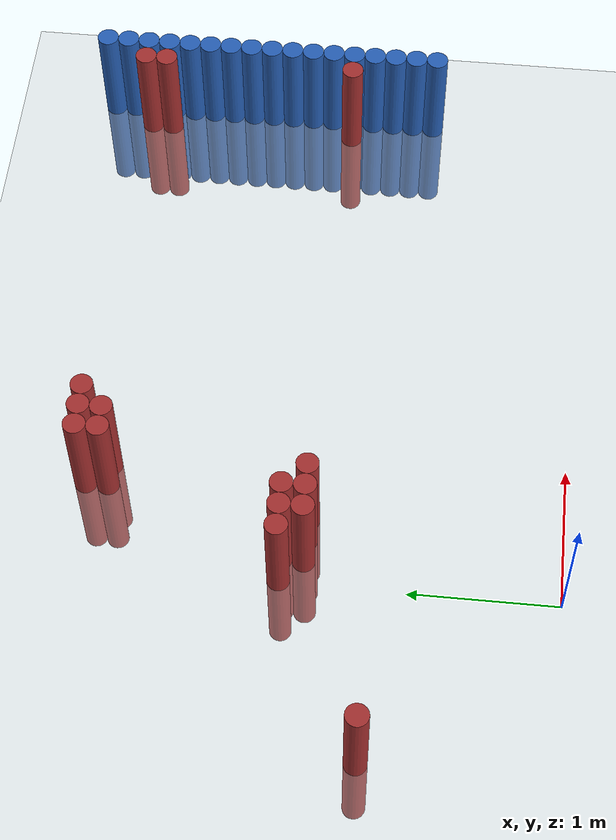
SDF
<sdf version="1.6">
 <world name="default">
  <model name="ground_plane">
   <static>1</static>
   <link name="link">
    <collision name="collision">
     <geometry><plane><normal>0 0 1</normal><size>100 100</size></plane></geometry>
     <surface><friction><ode><mu>100</mu><mu2>50</mu2></ode></friction></surface>
    </collision>
    <visual name="visual">
     <cast_shadows>0</cast_shadows>
     <geometry><plane><normal>0 0 1</normal><size>100 100</size></plane></geometry>
     <material>
      <script><uri>file://media/materials/scripts/gazebo.material</uri><name>Gazebo/Grey</name></script>
     </material>
    </visual>
   </link>
  </model>
  <model name="unit_cylinder_128">
   <static>1</static>
   <pose>3.925000 1.075000 0.000000 0.000000 0.000000 0.000000</pose>
   <link name="link">
    <inertial>
     <mass>1</mass>
     <inertia><ixx>0.145833</ixx><ixy>0</ixy><ixz>0</ixz><iyy>0.145833</iyy><iyz>0</iyz><izz>0.125</izz></inertia>
    </inertial>
    <collision name="collision">
     <geometry><cylinder><radius>0.075000</radius><length>1.5</length></cylinder></geometry>
    </collision>
    <visual name="visual">
     <geometry><cylinder><radius>0.075000</radius><length>1.5</length></cylinder></geometry>
     <material>
      <ambient>0.152000 0.379000 0.720000 1</ambient>
      <diffuse>0.152000 0.379000 0.720000 1</diffuse>
     </material>
     <material>
      <script><name>Gazebo/Grey</name><uri>file://media/materials/scripts/gazebo.material</uri></script>
     </material>
    </visual>
   </link>
  </model>
  <model name="unit_cylinder_130">
   <static>1</static>
   <pose>3.925000 1.225000 0.000000 0.000000 0.000000 0.000000</pose>
   <link name="link">
    <inertial>
     <mass>1</mass>
     <inertia><ixx>0.145833</ixx><ixy>0</ixy><ixz>0</ixz><iyy>0.145833</iyy><iyz>0</iyz><izz>0.125</izz></inertia>
    </inertial>
    <collision name="collision">
     <geometry><cylinder><radius>0.075000</radius><length>1.5</length></cylinder></geometry>
    </collision>
    <visual name="visual">
     <geometry><cylinder><radius>0.075000</radius><length>1.5</length></cylinder></geometry>
     <material>
      <ambient>0.152000 0.379000 0.720000 1</ambient>
      <diffuse>0.152000 0.379000 0.720000 1</diffuse>
     </material>
     <material>
      <script><name>Gazebo/Grey</name><uri>file://media/materials/scripts/gazebo.material</uri></script>
     </material>
    </visual>
   </link>
  </model>
  <model name="unit_cylinder_132">
   <static>1</static>
   <pose>3.925000 1.375000 0.000000 0.000000 0.000000 0.000000</pose>
   <link name="link">
    <inertial>
     <mass>1</mass>
     <inertia><ixx>0.145833</ixx><ixy>0</ixy><ixz>0</ixz><iyy>0.145833</iyy><iyz>0</iyz><izz>0.125</izz></inertia>
    </inertial>
    <collision name="collision">
     <geometry><cylinder><radius>0.075000</radius><length>1.5</length></cylinder></geometry>
    </collision>
    <visual name="visual">
     <geometry><cylinder><radius>0.075000</radius><length>1.5</length></cylinder></geometry>
     <material>
      <ambient>0.152000 0.379000 0.720000 1</ambient>
      <diffuse>0.152000 0.379000 0.720000 1</diffuse>
     </material>
     <material>
      <script><name>Gazebo/Grey</name><uri>file://media/materials/scripts/gazebo.material</uri></script>
     </material>
    </visual>
   </link>
  </model>
  <model name="unit_cylinder_134">
   <static>1</static>
   <pose>3.925000 1.525000 0.000000 0.000000 0.000000 0.000000</pose>
   <link name="link">
    <inertial>
     <mass>1</mass>
     <inertia><ixx>0.145833</ixx><ixy>0</ixy><ixz>0</ixz><iyy>0.145833</iyy><iyz>0</iyz><izz>0.125</izz></inertia>
    </inertial>
    <collision name="collision">
     <geometry><cylinder><radius>0.075000</radius><length>1.5</length></cylinder></geometry>
    </collision>
    <visual name="visual">
     <geometry><cylinder><radius>0.075000</radius><length>1.5</length></cylinder></geometry>
     <material>
      <ambient>0.152000 0.379000 0.720000 1</ambient>
      <diffuse>0.152000 0.379000 0.720000 1</diffuse>
     </material>
     <material>
      <script><name>Gazebo/Grey</name><uri>file://media/materials/scripts/gazebo.material</uri></script>
     </material>
    </visual>
   </link>
  </model>
  <model name="unit_cylinder_136">
   <static>1</static>
   <pose>3.925000 1.675000 0.000000 0.000000 0.000000 0.000000</pose>
   <link name="link">
    <inertial>
     <mass>1</mass>
     <inertia><ixx>0.145833</ixx><ixy>0</ixy><ixz>0</ixz><iyy>0.145833</iyy><iyz>0</iyz><izz>0.125</izz></inertia>
    </inertial>
    <collision name="collision">
     <geometry><cylinder><radius>0.075000</radius><length>1.5</length></cylinder></geometry>
    </collision>
    <visual name="visual">
     <geometry><cylinder><radius>0.075000</radius><length>1.5</length></cylinder></geometry>
     <material>
      <ambient>0.152000 0.379000 0.720000 1</ambient>
      <diffuse>0.152000 0.379000 0.720000 1</diffuse>
     </material>
     <material>
      <script><name>Gazebo/Grey</name><uri>file://media/materials/scripts/gazebo.material</uri></script>
     </material>
    </visual>
   </link>
  </model>
  <model name="unit_cylinder_138">
   <static>1</static>
   <pose>3.925000 1.825000 0.000000 0.000000 0.000000 0.000000</pose>
   <link name="link">
    <inertial>
     <mass>1</mass>
     <inertia><ixx>0.145833</ixx><ixy>0</ixy><ixz>0</ixz><iyy>0.145833</iyy><iyz>0</iyz><izz>0.125</izz></inertia>
    </inertial>
    <collision name="collision">
     <geometry><cylinder><radius>0.075000</radius><length>1.5</length></cylinder></geometry>
    </collision>
    <visual name="visual">
     <geometry><cylinder><radius>0.075000</radius><length>1.5</length></cylinder></geometry>
     <material>
      <ambient>0.152000 0.379000 0.720000 1</ambient>
      <diffuse>0.152000 0.379000 0.720000 1</diffuse>
     </material>
     <material>
      <script><name>Gazebo/Grey</name><uri>file://media/materials/scripts/gazebo.material</uri></script>
     </material>
    </visual>
   </link>
  </model>
  <model name="unit_cylinder_140">
   <static>1</static>
   <pose>3.925000 1.975000 0.000000 0.000000 0.000000 0.000000</pose>
   <link name="link">
    <inertial>
     <mass>1</mass>
     <inertia><ixx>0.145833</ixx><ixy>0</ixy><ixz>0</ixz><iyy>0.145833</iyy><iyz>0</iyz><izz>0.125</izz></inertia>
    </inertial>
    <collision name="collision">
     <geometry><cylinder><radius>0.075000</radius><length>1.5</length></cylinder></geometry>
    </collision>
    <visual name="visual">
     <geometry><cylinder><radius>0.075000</radius><length>1.5</length></cylinder></geometry>
     <material>
      <ambient>0.152000 0.379000 0.720000 1</ambient>
      <diffuse>0.152000 0.379000 0.720000 1</diffuse>
     </material>
     <material>
      <script><name>Gazebo/Grey</name><uri>file://media/materials/scripts/gazebo.material</uri></script>
     </material>
    </visual>
   </link>
  </model>
  <model name="unit_cylinder_142">
   <static>1</static>
   <pose>3.925000 2.125000 0.000000 0.000000 0.000000 0.000000</pose>
   <link name="link">
    <inertial>
     <mass>1</mass>
     <inertia><ixx>0.145833</ixx><ixy>0</ixy><ixz>0</ixz><iyy>0.145833</iyy><iyz>0</iyz><izz>0.125</izz></inertia>
    </inertial>
    <collision name="collision">
     <geometry><cylinder><radius>0.075000</radius><length>1.5</length></cylinder></geometry>
    </collision>
    <visual name="visual">
     <geometry><cylinder><radius>0.075000</radius><length>1.5</length></cylinder></geometry>
     <material>
      <ambient>0.152000 0.379000 0.720000 1</ambient>
      <diffuse>0.152000 0.379000 0.720000 1</diffuse>
     </material>
     <material>
      <script><name>Gazebo/Grey</name><uri>file://media/materials/scripts/gazebo.material</uri></script>
     </material>
    </visual>
   </link>
  </model>
  <model name="unit_cylinder_144">
   <static>1</static>
   <pose>3.925000 2.275000 0.000000 0.000000 0.000000 0.000000</pose>
   <link name="link">
    <inertial>
     <mass>1</mass>
     <inertia><ixx>0.145833</ixx><ixy>0</ixy><ixz>0</ixz><iyy>0.145833</iyy><iyz>0</iyz><izz>0.125</izz></inertia>
    </inertial>
    <collision name="collision">
     <geometry><cylinder><radius>0.075000</radius><length>1.5</length></cylinder></geometry>
    </collision>
    <visual name="visual">
     <geometry><cylinder><radius>0.075000</radius><length>1.5</length></cylinder></geometry>
     <material>
      <ambient>0.152000 0.379000 0.720000 1</ambient>
      <diffuse>0.152000 0.379000 0.720000 1</diffuse>
     </material>
     <material>
      <script><name>Gazebo/Grey</name><uri>file://media/materials/scripts/gazebo.material</uri></script>
     </material>
    </visual>
   </link>
  </model>
  <model name="unit_cylinder_146">
   <static>1</static>
   <pose>3.925000 2.425000 0.000000 0.000000 0.000000 0.000000</pose>
   <link name="link">
    <inertial>
     <mass>1</mass>
     <inertia><ixx>0.145833</ixx><ixy>0</ixy><ixz>0</ixz><iyy>0.145833</iyy><iyz>0</iyz><izz>0.125</izz></inertia>
    </inertial>
    <collision name="collision">
     <geometry><cylinder><radius>0.075000</radius><length>1.5</length></cylinder></geometry>
    </collision>
    <visual name="visual">
     <geometry><cylinder><radius>0.075000</radius><length>1.5</length></cylinder></geometry>
     <material>
      <ambient>0.152000 0.379000 0.720000 1</ambient>
      <diffuse>0.152000 0.379000 0.720000 1</diffuse>
     </material>
     <material>
      <script><name>Gazebo/Grey</name><uri>file://media/materials/scripts/gazebo.material</uri></script>
     </material>
    </visual>
   </link>
  </model>
  <model name="unit_cylinder_148">
   <static>1</static>
   <pose>3.925000 2.575000 0.000000 0.000000 0.000000 0.000000</pose>
   <link name="link">
    <inertial>
     <mass>1</mass>
     <inertia><ixx>0.145833</ixx><ixy>0</ixy><ixz>0</ixz><iyy>0.145833</iyy><iyz>0</iyz><izz>0.125</izz></inertia>
    </inertial>
    <collision name="collision">
     <geometry><cylinder><radius>0.075000</radius><length>1.5</length></cylinder></geometry>
    </collision>
    <visual name="visual">
     <geometry><cylinder><radius>0.075000</radius><length>1.5</length></cylinder></geometry>
     <material>
      <ambient>0.152000 0.379000 0.720000 1</ambient>
      <diffuse>0.152000 0.379000 0.720000 1</diffuse>
     </material>
     <material>
      <script><name>Gazebo/Grey</name><uri>file://media/materials/scripts/gazebo.material</uri></script>
     </material>
    </visual>
   </link>
  </model>
  <model name="unit_cylinder_150">
   <static>1</static>
   <pose>3.925000 2.725000 0.000000 0.000000 0.000000 0.000000</pose>
   <link name="link">
    <inertial>
     <mass>1</mass>
     <inertia><ixx>0.145833</ixx><ixy>0</ixy><ixz>0</ixz><iyy>0.145833</iyy><iyz>0</iyz><izz>0.125</izz></inertia>
    </inertial>
    <collision name="collision">
     <geometry><cylinder><radius>0.075000</radius><length>1.5</length></cylinder></geometry>
    </collision>
    <visual name="visual">
     <geometry><cylinder><radius>0.075000</radius><length>1.5</length></cylinder></geometry>
     <material>
      <ambient>0.152000 0.379000 0.720000 1</ambient>
      <diffuse>0.152000 0.379000 0.720000 1</diffuse>
     </material>
     <material>
      <script><name>Gazebo/Grey</name><uri>file://media/materials/scripts/gazebo.material</uri></script>
     </material>
    </visual>
   </link>
  </model>
  <model name="unit_cylinder_152">
   <static>1</static>
   <pose>3.925000 2.875000 0.000000 0.000000 0.000000 0.000000</pose>
   <link name="link">
    <inertial>
     <mass>1</mass>
     <inertia><ixx>0.145833</ixx><ixy>0</ixy><ixz>0</ixz><iyy>0.145833</iyy><iyz>0</iyz><izz>0.125</izz></inertia>
    </inertial>
    <collision name="collision">
     <geometry><cylinder><radius>0.075000</radius><length>1.5</length></cylinder></geometry>
    </collision>
    <visual name="visual">
     <geometry><cylinder><radius>0.075000</radius><length>1.5</length></cylinder></geometry>
     <material>
      <ambient>0.152000 0.379000 0.720000 1</ambient>
      <diffuse>0.152000 0.379000 0.720000 1</diffuse>
     </material>
     <material>
      <script><name>Gazebo/Grey</name><uri>file://media/materials/scripts/gazebo.material</uri></script>
     </material>
    </visual>
   </link>
  </model>
  <model name="unit_cylinder_154">
   <static>1</static>
   <pose>3.925000 3.025000 0.000000 0.000000 0.000000 0.000000</pose>
   <link name="link">
    <inertial>
     <mass>1</mass>
     <inertia><ixx>0.145833</ixx><ixy>0</ixy><ixz>0</ixz><iyy>0.145833</iyy><iyz>0</iyz><izz>0.125</izz></inertia>
    </inertial>
    <collision name="collision">
     <geometry><cylinder><radius>0.075000</radius><length>1.5</length></cylinder></geometry>
    </collision>
    <visual name="visual">
     <geometry><cylinder><radius>0.075000</radius><length>1.5</length></cylinder></geometry>
     <material>
      <ambient>0.152000 0.379000 0.720000 1</ambient>
      <diffuse>0.152000 0.379000 0.720000 1</diffuse>
     </material>
     <material>
      <script><name>Gazebo/Grey</name><uri>file://media/materials/scripts/gazebo.material</uri></script>
     </material>
    </visual>
   </link>
  </model>
  <model name="unit_cylinder_156">
   <static>1</static>
   <pose>3.925000 3.175000 0.000000 0.000000 0.000000 0.000000</pose>
   <link name="link">
    <inertial>
     <mass>1</mass>
     <inertia><ixx>0.145833</ixx><ixy>0</ixy><ixz>0</ixz><iyy>0.145833</iyy><iyz>0</iyz><izz>0.125</izz></inertia>
    </inertial>
    <collision name="collision">
     <geometry><cylinder><radius>0.075000</radius><length>1.5</length></cylinder></geometry>
    </collision>
    <visual name="visual">
     <geometry><cylinder><radius>0.075000</radius><length>1.5</length></cylinder></geometry>
     <material>
      <ambient>0.152000 0.379000 0.720000 1</ambient>
      <diffuse>0.152000 0.379000 0.720000 1</diffuse>
     </material>
     <material>
      <script><name>Gazebo/Grey</name><uri>file://media/materials/scripts/gazebo.material</uri></script>
     </material>
    </visual>
   </link>
  </model>
  <model name="unit_cylinder_158">
   <static>1</static>
   <pose>3.925000 3.325000 0.000000 0.000000 0.000000 0.000000</pose>
   <link name="link">
    <inertial>
     <mass>1</mass>
     <inertia><ixx>0.145833</ixx><ixy>0</ixy><ixz>0</ixz><iyy>0.145833</iyy><iyz>0</iyz><izz>0.125</izz></inertia>
    </inertial>
    <collision name="collision">
     <geometry><cylinder><radius>0.075000</radius><length>1.5</length></cylinder></geometry>
    </collision>
    <visual name="visual">
     <geometry><cylinder><radius>0.075000</radius><length>1.5</length></cylinder></geometry>
     <material>
      <ambient>0.152000 0.379000 0.720000 1</ambient>
      <diffuse>0.152000 0.379000 0.720000 1</diffuse>
     </material>
     <material>
      <script><name>Gazebo/Grey</name><uri>file://media/materials/scripts/gazebo.material</uri></script>
     </material>
    </visual>
   </link>
  </model>
  <model name="unit_cylinder_160">
   <static>1</static>
   <pose>3.925000 3.475000 0.000000 0.000000 0.000000 0.000000</pose>
   <link name="link">
    <inertial>
     <mass>1</mass>
     <inertia><ixx>0.145833</ixx><ixy>0</ixy><ixz>0</ixz><iyy>0.145833</iyy><iyz>0</iyz><izz>0.125</izz></inertia>
    </inertial>
    <collision name="collision">
     <geometry><cylinder><radius>0.075000</radius><length>1.5</length></cylinder></geometry>
    </collision>
    <visual name="visual">
     <geometry><cylinder><radius>0.075000</radius><length>1.5</length></cylinder></geometry>
     <material>
      <ambient>0.152000 0.379000 0.720000 1</ambient>
      <diffuse>0.152000 0.379000 0.720000 1</diffuse>
     </material>
     <material>
      <script><name>Gazebo/Grey</name><uri>file://media/materials/scripts/gazebo.material</uri></script>
     </material>
    </visual>
   </link>
  </model>
  <model name="unit_cylinder_293">
   <static>1</static>
   <pose>-1.175000 1.225000 0.000000 0.000000 0.000000 0.000000</pose>
   <link name="link">
    <inertial>
     <mass>1</mass>
     <inertia><ixx>0.145833</ixx><ixy>0</ixy><ixz>0</ixz><iyy>0.145833</iyy><iyz>0</iyz><izz>0.125</izz></inertia>
    </inertial>
    <collision name="collision">
     <geometry><cylinder><radius>0.075000</radius><length>1.5</length></cylinder></geometry>
    </collision>
    <visual name="visual">
     <geometry><cylinder><radius>0.075000</radius><length>1.5</length></cylinder></geometry>
     <material>
      <ambient>0.648000 0.192000 0.192000 1</ambient>
      <diffuse>0.648000 0.192000 0.192000 1</diffuse>
     </material>
     <material>
      <script><name>Gazebo/Grey</name><uri>file://media/materials/scripts/gazebo.material</uri></script>
     </material>
    </visual>
   </link>
  </model>
  <model name="unit_cylinder_300">
   <static>1</static>
   <pose>0.025000 1.825000 0.000000 0.000000 0.000000 0.000000</pose>
   <link name="link">
    <inertial>
     <mass>1</mass>
     <inertia><ixx>0.145833</ixx><ixy>0</ixy><ixz>0</ixz><iyy>0.145833</iyy><iyz>0</iyz><izz>0.125</izz></inertia>
    </inertial>
    <collision name="collision">
     <geometry><cylinder><radius>0.075000</radius><length>1.5</length></cylinder></geometry>
    </collision>
    <visual name="visual">
     <geometry><cylinder><radius>0.075000</radius><length>1.5</length></cylinder></geometry>
     <material>
      <ambient>0.648000 0.192000 0.192000 1</ambient>
      <diffuse>0.648000 0.192000 0.192000 1</diffuse>
     </material>
     <material>
      <script><name>Gazebo/Grey</name><uri>file://media/materials/scripts/gazebo.material</uri></script>
     </material>
    </visual>
   </link>
  </model>
  <model name="unit_cylinder_301">
   <static>1</static>
   <pose>0.175000 1.675000 0.000000 0.000000 0.000000 0.000000</pose>
   <link name="link">
    <inertial>
     <mass>1</mass>
     <inertia><ixx>0.145833</ixx><ixy>0</ixy><ixz>0</ixz><iyy>0.145833</iyy><iyz>0</iyz><izz>0.125</izz></inertia>
    </inertial>
    <collision name="collision">
     <geometry><cylinder><radius>0.075000</radius><length>1.5</length></cylinder></geometry>
    </collision>
    <visual name="visual">
     <geometry><cylinder><radius>0.075000</radius><length>1.5</length></cylinder></geometry>
     <material>
      <ambient>0.648000 0.192000 0.192000 1</ambient>
      <diffuse>0.648000 0.192000 0.192000 1</diffuse>
     </material>
     <material>
      <script><name>Gazebo/Grey</name><uri>file://media/materials/scripts/gazebo.material</uri></script>
     </material>
    </visual>
   </link>
  </model>
  <model name="unit_cylinder_302">
   <static>1</static>
   <pose>0.175000 1.825000 0.000000 0.000000 0.000000 0.000000</pose>
   <link name="link">
    <inertial>
     <mass>1</mass>
     <inertia><ixx>0.145833</ixx><ixy>0</ixy><ixz>0</ixz><iyy>0.145833</iyy><iyz>0</iyz><izz>0.125</izz></inertia>
    </inertial>
    <collision name="collision">
     <geometry><cylinder><radius>0.075000</radius><length>1.5</length></cylinder></geometry>
    </collision>
    <visual name="visual">
     <geometry><cylinder><radius>0.075000</radius><length>1.5</length></cylinder></geometry>
     <material>
      <ambient>0.648000 0.192000 0.192000 1</ambient>
      <diffuse>0.648000 0.192000 0.192000 1</diffuse>
     </material>
     <material>
      <script><name>Gazebo/Grey</name><uri>file://media/materials/scripts/gazebo.material</uri></script>
     </material>
    </visual>
   </link>
  </model>
  <model name="unit_cylinder_304">
   <static>1</static>
   <pose>0.325000 1.675000 0.000000 0.000000 0.000000 0.000000</pose>
   <link name="link">
    <inertial>
     <mass>1</mass>
     <inertia><ixx>0.145833</ixx><ixy>0</ixy><ixz>0</ixz><iyy>0.145833</iyy><iyz>0</iyz><izz>0.125</izz></inertia>
    </inertial>
    <collision name="collision">
     <geometry><cylinder><radius>0.075000</radius><length>1.5</length></cylinder></geometry>
    </collision>
    <visual name="visual">
     <geometry><cylinder><radius>0.075000</radius><length>1.5</length></cylinder></geometry>
     <material>
      <ambient>0.648000 0.192000 0.192000 1</ambient>
      <diffuse>0.648000 0.192000 0.192000 1</diffuse>
     </material>
     <material>
      <script><name>Gazebo/Grey</name><uri>file://media/materials/scripts/gazebo.material</uri></script>
     </material>
    </visual>
   </link>
  </model>
  <model name="unit_cylinder_305">
   <static>1</static>
   <pose>0.325000 1.825000 0.000000 0.000000 0.000000 0.000000</pose>
   <link name="link">
    <inertial>
     <mass>1</mass>
     <inertia><ixx>0.145833</ixx><ixy>0</ixy><ixz>0</ixz><iyy>0.145833</iyy><iyz>0</iyz><izz>0.125</izz></inertia>
    </inertial>
    <collision name="collision">
     <geometry><cylinder><radius>0.075000</radius><length>1.5</length></cylinder></geometry>
    </collision>
    <visual name="visual">
     <geometry><cylinder><radius>0.075000</radius><length>1.5</length></cylinder></geometry>
     <material>
      <ambient>0.648000 0.192000 0.192000 1</ambient>
      <diffuse>0.648000 0.192000 0.192000 1</diffuse>
     </material>
     <material>
      <script><name>Gazebo/Grey</name><uri>file://media/materials/scripts/gazebo.material</uri></script>
     </material>
    </visual>
   </link>
  </model>
  <model name="unit_cylinder_310">
   <static>1</static>
   <pose>0.475000 1.675000 0.000000 0.000000 0.000000 0.000000</pose>
   <link name="link">
    <inertial>
     <mass>1</mass>
     <inertia><ixx>0.145833</ixx><ixy>0</ixy><ixz>0</ixz><iyy>0.145833</iyy><iyz>0</iyz><izz>0.125</izz></inertia>
    </inertial>
    <collision name="collision">
     <geometry><cylinder><radius>0.075000</radius><length>1.5</length></cylinder></geometry>
    </collision>
    <visual name="visual">
     <geometry><cylinder><radius>0.075000</radius><length>1.5</length></cylinder></geometry>
     <material>
      <ambient>0.648000 0.192000 0.192000 1</ambient>
      <diffuse>0.648000 0.192000 0.192000 1</diffuse>
     </material>
     <material>
      <script><name>Gazebo/Grey</name><uri>file://media/materials/scripts/gazebo.material</uri></script>
     </material>
    </visual>
   </link>
  </model>
  <model name="unit_cylinder_312">
   <static>1</static>
   <pose>0.625000 3.025000 0.000000 0.000000 0.000000 0.000000</pose>
   <link name="link">
    <inertial>
     <mass>1</mass>
     <inertia><ixx>0.145833</ixx><ixy>0</ixy><ixz>0</ixz><iyy>0.145833</iyy><iyz>0</iyz><izz>0.125</izz></inertia>
    </inertial>
    <collision name="collision">
     <geometry><cylinder><radius>0.075000</radius><length>1.5</length></cylinder></geometry>
    </collision>
    <visual name="visual">
     <geometry><cylinder><radius>0.075000</radius><length>1.5</length></cylinder></geometry>
     <material>
      <ambient>0.648000 0.192000 0.192000 1</ambient>
      <diffuse>0.648000 0.192000 0.192000 1</diffuse>
     </material>
     <material>
      <script><name>Gazebo/Grey</name><uri>file://media/materials/scripts/gazebo.material</uri></script>
     </material>
    </visual>
   </link>
  </model>
  <model name="unit_cylinder_313">
   <static>1</static>
   <pose>0.625000 3.175000 0.000000 0.000000 0.000000 0.000000</pose>
   <link name="link">
    <inertial>
     <mass>1</mass>
     <inertia><ixx>0.145833</ixx><ixy>0</ixy><ixz>0</ixz><iyy>0.145833</iyy><iyz>0</iyz><izz>0.125</izz></inertia>
    </inertial>
    <collision name="collision">
     <geometry><cylinder><radius>0.075000</radius><length>1.5</length></cylinder></geometry>
    </collision>
    <visual name="visual">
     <geometry><cylinder><radius>0.075000</radius><length>1.5</length></cylinder></geometry>
     <material>
      <ambient>0.648000 0.192000 0.192000 1</ambient>
      <diffuse>0.648000 0.192000 0.192000 1</diffuse>
     </material>
     <material>
      <script><name>Gazebo/Grey</name><uri>file://media/materials/scripts/gazebo.material</uri></script>
     </material>
    </visual>
   </link>
  </model>
  <model name="unit_cylinder_314">
   <static>1</static>
   <pose>0.775000 3.025000 0.000000 0.000000 0.000000 0.000000</pose>
   <link name="link">
    <inertial>
     <mass>1</mass>
     <inertia><ixx>0.145833</ixx><ixy>0</ixy><ixz>0</ixz><iyy>0.145833</iyy><iyz>0</iyz><izz>0.125</izz></inertia>
    </inertial>
    <collision name="collision">
     <geometry><cylinder><radius>0.075000</radius><length>1.5</length></cylinder></geometry>
    </collision>
    <visual name="visual">
     <geometry><cylinder><radius>0.075000</radius><length>1.5</length></cylinder></geometry>
     <material>
      <ambient>0.648000 0.192000 0.192000 1</ambient>
      <diffuse>0.648000 0.192000 0.192000 1</diffuse>
     </material>
     <material>
      <script><name>Gazebo/Grey</name><uri>file://media/materials/scripts/gazebo.material</uri></script>
     </material>
    </visual>
   </link>
  </model>
  <model name="unit_cylinder_315">
   <static>1</static>
   <pose>0.775000 3.175000 0.000000 0.000000 0.000000 0.000000</pose>
   <link name="link">
    <inertial>
     <mass>1</mass>
     <inertia><ixx>0.145833</ixx><ixy>0</ixy><ixz>0</ixz><iyy>0.145833</iyy><iyz>0</iyz><izz>0.125</izz></inertia>
    </inertial>
    <collision name="collision">
     <geometry><cylinder><radius>0.075000</radius><length>1.5</length></cylinder></geometry>
    </collision>
    <visual name="visual">
     <geometry><cylinder><radius>0.075000</radius><length>1.5</length></cylinder></geometry>
     <material>
      <ambient>0.648000 0.192000 0.192000 1</ambient>
      <diffuse>0.648000 0.192000 0.192000 1</diffuse>
     </material>
     <material>
      <script><name>Gazebo/Grey</name><uri>file://media/materials/scripts/gazebo.material</uri></script>
     </material>
    </visual>
   </link>
  </model>
  <model name="unit_cylinder_316">
   <static>1</static>
   <pose>0.925000 3.175000 0.000000 0.000000 0.000000 0.000000</pose>
   <link name="link">
    <inertial>
     <mass>1</mass>
     <inertia><ixx>0.145833</ixx><ixy>0</ixy><ixz>0</ixz><iyy>0.145833</iyy><iyz>0</iyz><izz>0.125</izz></inertia>
    </inertial>
    <collision name="collision">
     <geometry><cylinder><radius>0.075000</radius><length>1.5</length></cylinder></geometry>
    </collision>
    <visual name="visual">
     <geometry><cylinder><radius>0.075000</radius><length>1.5</length></cylinder></geometry>
     <material>
      <ambient>0.648000 0.192000 0.192000 1</ambient>
      <diffuse>0.648000 0.192000 0.192000 1</diffuse>
     </material>
     <material>
      <script><name>Gazebo/Grey</name><uri>file://media/materials/scripts/gazebo.material</uri></script>
     </material>
    </visual>
   </link>
  </model>
  <model name="unit_cylinder_328">
   <static>1</static>
   <pose>3.775000 1.675000 0.000000 0.000000 0.000000 0.000000</pose>
   <link name="link">
    <inertial>
     <mass>1</mass>
     <inertia><ixx>0.145833</ixx><ixy>0</ixy><ixz>0</ixz><iyy>0.145833</iyy><iyz>0</iyz><izz>0.125</izz></inertia>
    </inertial>
    <collision name="collision">
     <geometry><cylinder><radius>0.075000</radius><length>1.5</length></cylinder></geometry>
    </collision>
    <visual name="visual">
     <geometry><cylinder><radius>0.075000</radius><length>1.5</length></cylinder></geometry>
     <material>
      <ambient>0.648000 0.192000 0.192000 1</ambient>
      <diffuse>0.648000 0.192000 0.192000 1</diffuse>
     </material>
     <material>
      <script><name>Gazebo/Grey</name><uri>file://media/materials/scripts/gazebo.material</uri></script>
     </material>
    </visual>
   </link>
  </model>
  <model name="unit_cylinder_329">
   <static>1</static>
   <pose>3.775000 3.025000 0.000000 0.000000 0.000000 0.000000</pose>
   <link name="link">
    <inertial>
     <mass>1</mass>
     <inertia><ixx>0.145833</ixx><ixy>0</ixy><ixz>0</ixz><iyy>0.145833</iyy><iyz>0</iyz><izz>0.125</izz></inertia>
    </inertial>
    <collision name="collision">
     <geometry><cylinder><radius>0.075000</radius><length>1.5</length></cylinder></geometry>
    </collision>
    <visual name="visual">
     <geometry><cylinder><radius>0.075000</radius><length>1.5</length></cylinder></geometry>
     <material>
      <ambient>0.648000 0.192000 0.192000 1</ambient>
      <diffuse>0.648000 0.192000 0.192000 1</diffuse>
     </material>
     <material>
      <script><name>Gazebo/Grey</name><uri>file://media/materials/scripts/gazebo.material</uri></script>
     </material>
    </visual>
   </link>
  </model>
  <model name="unit_cylinder_330">
   <static>1</static>
   <pose>3.775000 3.175000 0.000000 0.000000 0.000000 0.000000</pose>
   <link name="link">
    <inertial>
     <mass>1</mass>
     <inertia><ixx>0.145833</ixx><ixy>0</ixy><ixz>0</ixz><iyy>0.145833</iyy><iyz>0</iyz><izz>0.125</izz></inertia>
    </inertial>
    <collision name="collision">
     <geometry><cylinder><radius>0.075000</radius><length>1.5</length></cylinder></geometry>
    </collision>
    <visual name="visual">
     <geometry><cylinder><radius>0.075000</radius><length>1.5</length></cylinder></geometry>
     <material>
      <ambient>0.648000 0.192000 0.192000 1</ambient>
      <diffuse>0.648000 0.192000 0.192000 1</diffuse>
     </material>
     <material>
      <script><name>Gazebo/Grey</name><uri>file://media/materials/scripts/gazebo.material</uri></script>
     </material>
    </visual>
   </link>
  </model>
  <model name="unit_cylinder_353">
   <static>1</static>
   <pose>3.925000 1.075000 0.000000 0.000000 0.000000 0.000000</pose>
   <link name="link">
    <inertial>
     <mass>1</mass>
     <inertia><ixx>0.145833</ixx><ixy>0</ixy><ixz>0</ixz><iyy>0.145833</iyy><iyz>0</iyz><izz>0.125</izz></inertia>
    </inertial>
    <collision name="collision">
     <geometry><cylinder><radius>0.075000</radius><length>1.5</length></cylinder></geometry>
    </collision>
    <visual name="visual">
     <geometry><cylinder><radius>0.075000</radius><length>1.5</length></cylinder></geometry>
     <material>
      <ambient>0.152000 0.379000 0.720000 1</ambient>
      <diffuse>0.152000 0.379000 0.720000 1</diffuse>
     </material>
     <material>
      <script><name>Gazebo/Grey</name><uri>file://media/materials/scripts/gazebo.material</uri></script>
     </material>
    </visual>
   </link>
  </model>
  <model name="unit_cylinder_354">
   <static>1</static>
   <pose>3.925000 1.225000 0.000000 0.000000 0.000000 0.000000</pose>
   <link name="link">
    <inertial>
     <mass>1</mass>
     <inertia><ixx>0.145833</ixx><ixy>0</ixy><ixz>0</ixz><iyy>0.145833</iyy><iyz>0</iyz><izz>0.125</izz></inertia>
    </inertial>
    <collision name="collision">
     <geometry><cylinder><radius>0.075000</radius><length>1.5</length></cylinder></geometry>
    </collision>
    <visual name="visual">
     <geometry><cylinder><radius>0.075000</radius><length>1.5</length></cylinder></geometry>
     <material>
      <ambient>0.152000 0.379000 0.720000 1</ambient>
      <diffuse>0.152000 0.379000 0.720000 1</diffuse>
     </material>
     <material>
      <script><name>Gazebo/Grey</name><uri>file://media/materials/scripts/gazebo.material</uri></script>
     </material>
    </visual>
   </link>
  </model>
  <model name="unit_cylinder_355">
   <static>1</static>
   <pose>3.925000 1.375000 0.000000 0.000000 0.000000 0.000000</pose>
   <link name="link">
    <inertial>
     <mass>1</mass>
     <inertia><ixx>0.145833</ixx><ixy>0</ixy><ixz>0</ixz><iyy>0.145833</iyy><iyz>0</iyz><izz>0.125</izz></inertia>
    </inertial>
    <collision name="collision">
     <geometry><cylinder><radius>0.075000</radius><length>1.5</length></cylinder></geometry>
    </collision>
    <visual name="visual">
     <geometry><cylinder><radius>0.075000</radius><length>1.5</length></cylinder></geometry>
     <material>
      <ambient>0.152000 0.379000 0.720000 1</ambient>
      <diffuse>0.152000 0.379000 0.720000 1</diffuse>
     </material>
     <material>
      <script><name>Gazebo/Grey</name><uri>file://media/materials/scripts/gazebo.material</uri></script>
     </material>
    </visual>
   </link>
  </model>
  <model name="unit_cylinder_356">
   <static>1</static>
   <pose>3.925000 1.525000 0.000000 0.000000 0.000000 0.000000</pose>
   <link name="link">
    <inertial>
     <mass>1</mass>
     <inertia><ixx>0.145833</ixx><ixy>0</ixy><ixz>0</ixz><iyy>0.145833</iyy><iyz>0</iyz><izz>0.125</izz></inertia>
    </inertial>
    <collision name="collision">
     <geometry><cylinder><radius>0.075000</radius><length>1.5</length></cylinder></geometry>
    </collision>
    <visual name="visual">
     <geometry><cylinder><radius>0.075000</radius><length>1.5</length></cylinder></geometry>
     <material>
      <ambient>0.152000 0.379000 0.720000 1</ambient>
      <diffuse>0.152000 0.379000 0.720000 1</diffuse>
     </material>
     <material>
      <script><name>Gazebo/Grey</name><uri>file://media/materials/scripts/gazebo.material</uri></script>
     </material>
    </visual>
   </link>
  </model>
  <model name="unit_cylinder_357">
   <static>1</static>
   <pose>3.925000 1.675000 0.000000 0.000000 0.000000 0.000000</pose>
   <link name="link">
    <inertial>
     <mass>1</mass>
     <inertia><ixx>0.145833</ixx><ixy>0</ixy><ixz>0</ixz><iyy>0.145833</iyy><iyz>0</iyz><izz>0.125</izz></inertia>
    </inertial>
    <collision name="collision">
     <geometry><cylinder><radius>0.075000</radius><length>1.5</length></cylinder></geometry>
    </collision>
    <visual name="visual">
     <geometry><cylinder><radius>0.075000</radius><length>1.5</length></cylinder></geometry>
     <material>
      <ambient>0.152000 0.379000 0.720000 1</ambient>
      <diffuse>0.152000 0.379000 0.720000 1</diffuse>
     </material>
     <material>
      <script><name>Gazebo/Grey</name><uri>file://media/materials/scripts/gazebo.material</uri></script>
     </material>
    </visual>
   </link>
  </model>
  <model name="unit_cylinder_358">
   <static>1</static>
   <pose>3.925000 1.825000 0.000000 0.000000 0.000000 0.000000</pose>
   <link name="link">
    <inertial>
     <mass>1</mass>
     <inertia><ixx>0.145833</ixx><ixy>0</ixy><ixz>0</ixz><iyy>0.145833</iyy><iyz>0</iyz><izz>0.125</izz></inertia>
    </inertial>
    <collision name="collision">
     <geometry><cylinder><radius>0.075000</radius><length>1.5</length></cylinder></geometry>
    </collision>
    <visual name="visual">
     <geometry><cylinder><radius>0.075000</radius><length>1.5</length></cylinder></geometry>
     <material>
      <ambient>0.152000 0.379000 0.720000 1</ambient>
      <diffuse>0.152000 0.379000 0.720000 1</diffuse>
     </material>
     <material>
      <script><name>Gazebo/Grey</name><uri>file://media/materials/scripts/gazebo.material</uri></script>
     </material>
    </visual>
   </link>
  </model>
  <model name="unit_cylinder_359">
   <static>1</static>
   <pose>3.925000 1.975000 0.000000 0.000000 0.000000 0.000000</pose>
   <link name="link">
    <inertial>
     <mass>1</mass>
     <inertia><ixx>0.145833</ixx><ixy>0</ixy><ixz>0</ixz><iyy>0.145833</iyy><iyz>0</iyz><izz>0.125</izz></inertia>
    </inertial>
    <collision name="collision">
     <geometry><cylinder><radius>0.075000</radius><length>1.5</length></cylinder></geometry>
    </collision>
    <visual name="visual">
     <geometry><cylinder><radius>0.075000</radius><length>1.5</length></cylinder></geometry>
     <material>
      <ambient>0.152000 0.379000 0.720000 1</ambient>
      <diffuse>0.152000 0.379000 0.720000 1</diffuse>
     </material>
     <material>
      <script><name>Gazebo/Grey</name><uri>file://media/materials/scripts/gazebo.material</uri></script>
     </material>
    </visual>
   </link>
  </model>
  <model name="unit_cylinder_360">
   <static>1</static>
   <pose>3.925000 2.125000 0.000000 0.000000 0.000000 0.000000</pose>
   <link name="link">
    <inertial>
     <mass>1</mass>
     <inertia><ixx>0.145833</ixx><ixy>0</ixy><ixz>0</ixz><iyy>0.145833</iyy><iyz>0</iyz><izz>0.125</izz></inertia>
    </inertial>
    <collision name="collision">
     <geometry><cylinder><radius>0.075000</radius><length>1.5</length></cylinder></geometry>
    </collision>
    <visual name="visual">
     <geometry><cylinder><radius>0.075000</radius><length>1.5</length></cylinder></geometry>
     <material>
      <ambient>0.152000 0.379000 0.720000 1</ambient>
      <diffuse>0.152000 0.379000 0.720000 1</diffuse>
     </material>
     <material>
      <script><name>Gazebo/Grey</name><uri>file://media/materials/scripts/gazebo.material</uri></script>
     </material>
    </visual>
   </link>
  </model>
  <model name="unit_cylinder_361">
   <static>1</static>
   <pose>3.925000 2.275000 0.000000 0.000000 0.000000 0.000000</pose>
   <link name="link">
    <inertial>
     <mass>1</mass>
     <inertia><ixx>0.145833</ixx><ixy>0</ixy><ixz>0</ixz><iyy>0.145833</iyy><iyz>0</iyz><izz>0.125</izz></inertia>
    </inertial>
    <collision name="collision">
     <geometry><cylinder><radius>0.075000</radius><length>1.5</length></cylinder></geometry>
    </collision>
    <visual name="visual">
     <geometry><cylinder><radius>0.075000</radius><length>1.5</length></cylinder></geometry>
     <material>
      <ambient>0.152000 0.379000 0.720000 1</ambient>
      <diffuse>0.152000 0.379000 0.720000 1</diffuse>
     </material>
     <material>
      <script><name>Gazebo/Grey</name><uri>file://media/materials/scripts/gazebo.material</uri></script>
     </material>
    </visual>
   </link>
  </model>
  <model name="unit_cylinder_362">
   <static>1</static>
   <pose>3.925000 2.425000 0.000000 0.000000 0.000000 0.000000</pose>
   <link name="link">
    <inertial>
     <mass>1</mass>
     <inertia><ixx>0.145833</ixx><ixy>0</ixy><ixz>0</ixz><iyy>0.145833</iyy><iyz>0</iyz><izz>0.125</izz></inertia>
    </inertial>
    <collision name="collision">
     <geometry><cylinder><radius>0.075000</radius><length>1.5</length></cylinder></geometry>
    </collision>
    <visual name="visual">
     <geometry><cylinder><radius>0.075000</radius><length>1.5</length></cylinder></geometry>
     <material>
      <ambient>0.152000 0.379000 0.720000 1</ambient>
      <diffuse>0.152000 0.379000 0.720000 1</diffuse>
     </material>
     <material>
      <script><name>Gazebo/Grey</name><uri>file://media/materials/scripts/gazebo.material</uri></script>
     </material>
    </visual>
   </link>
  </model>
  <model name="unit_cylinder_363">
   <static>1</static>
   <pose>3.925000 2.575000 0.000000 0.000000 0.000000 0.000000</pose>
   <link name="link">
    <inertial>
     <mass>1</mass>
     <inertia><ixx>0.145833</ixx><ixy>0</ixy><ixz>0</ixz><iyy>0.145833</iyy><iyz>0</iyz><izz>0.125</izz></inertia>
    </inertial>
    <collision name="collision">
     <geometry><cylinder><radius>0.075000</radius><length>1.5</length></cylinder></geometry>
    </collision>
    <visual name="visual">
     <geometry><cylinder><radius>0.075000</radius><length>1.5</length></cylinder></geometry>
     <material>
      <ambient>0.152000 0.379000 0.720000 1</ambient>
      <diffuse>0.152000 0.379000 0.720000 1</diffuse>
     </material>
     <material>
      <script><name>Gazebo/Grey</name><uri>file://media/materials/scripts/gazebo.material</uri></script>
     </material>
    </visual>
   </link>
  </model>
  <model name="unit_cylinder_364">
   <static>1</static>
   <pose>3.925000 2.725000 0.000000 0.000000 0.000000 0.000000</pose>
   <link name="link">
    <inertial>
     <mass>1</mass>
     <inertia><ixx>0.145833</ixx><ixy>0</ixy><ixz>0</ixz><iyy>0.145833</iyy><iyz>0</iyz><izz>0.125</izz></inertia>
    </inertial>
    <collision name="collision">
     <geometry><cylinder><radius>0.075000</radius><length>1.5</length></cylinder></geometry>
    </collision>
    <visual name="visual">
     <geometry><cylinder><radius>0.075000</radius><length>1.5</length></cylinder></geometry>
     <material>
      <ambient>0.152000 0.379000 0.720000 1</ambient>
      <diffuse>0.152000 0.379000 0.720000 1</diffuse>
     </material>
     <material>
      <script><name>Gazebo/Grey</name><uri>file://media/materials/scripts/gazebo.material</uri></script>
     </material>
    </visual>
   </link>
  </model>
  <model name="unit_cylinder_365">
   <static>1</static>
   <pose>3.925000 2.875000 0.000000 0.000000 0.000000 0.000000</pose>
   <link name="link">
    <inertial>
     <mass>1</mass>
     <inertia><ixx>0.145833</ixx><ixy>0</ixy><ixz>0</ixz><iyy>0.145833</iyy><iyz>0</iyz><izz>0.125</izz></inertia>
    </inertial>
    <collision name="collision">
     <geometry><cylinder><radius>0.075000</radius><length>1.5</length></cylinder></geometry>
    </collision>
    <visual name="visual">
     <geometry><cylinder><radius>0.075000</radius><length>1.5</length></cylinder></geometry>
     <material>
      <ambient>0.152000 0.379000 0.720000 1</ambient>
      <diffuse>0.152000 0.379000 0.720000 1</diffuse>
     </material>
     <material>
      <script><name>Gazebo/Grey</name><uri>file://media/materials/scripts/gazebo.material</uri></script>
     </material>
    </visual>
   </link>
  </model>
  <model name="unit_cylinder_366">
   <static>1</static>
   <pose>3.925000 3.025000 0.000000 0.000000 0.000000 0.000000</pose>
   <link name="link">
    <inertial>
     <mass>1</mass>
     <inertia><ixx>0.145833</ixx><ixy>0</ixy><ixz>0</ixz><iyy>0.145833</iyy><iyz>0</iyz><izz>0.125</izz></inertia>
    </inertial>
    <collision name="collision">
     <geometry><cylinder><radius>0.075000</radius><length>1.5</length></cylinder></geometry>
    </collision>
    <visual name="visual">
     <geometry><cylinder><radius>0.075000</radius><length>1.5</length></cylinder></geometry>
     <material>
      <ambient>0.152000 0.379000 0.720000 1</ambient>
      <diffuse>0.152000 0.379000 0.720000 1</diffuse>
     </material>
     <material>
      <script><name>Gazebo/Grey</name><uri>file://media/materials/scripts/gazebo.material</uri></script>
     </material>
    </visual>
   </link>
  </model>
  <model name="unit_cylinder_367">
   <static>1</static>
   <pose>3.925000 3.175000 0.000000 0.000000 0.000000 0.000000</pose>
   <link name="link">
    <inertial>
     <mass>1</mass>
     <inertia><ixx>0.145833</ixx><ixy>0</ixy><ixz>0</ixz><iyy>0.145833</iyy><iyz>0</iyz><izz>0.125</izz></inertia>
    </inertial>
    <collision name="collision">
     <geometry><cylinder><radius>0.075000</radius><length>1.5</length></cylinder></geometry>
    </collision>
    <visual name="visual">
     <geometry><cylinder><radius>0.075000</radius><length>1.5</length></cylinder></geometry>
     <material>
      <ambient>0.152000 0.379000 0.720000 1</ambient>
      <diffuse>0.152000 0.379000 0.720000 1</diffuse>
     </material>
     <material>
      <script><name>Gazebo/Grey</name><uri>file://media/materials/scripts/gazebo.material</uri></script>
     </material>
    </visual>
   </link>
  </model>
  <model name="unit_cylinder_368">
   <static>1</static>
   <pose>3.925000 3.325000 0.000000 0.000000 0.000000 0.000000</pose>
   <link name="link">
    <inertial>
     <mass>1</mass>
     <inertia><ixx>0.145833</ixx><ixy>0</ixy><ixz>0</ixz><iyy>0.145833</iyy><iyz>0</iyz><izz>0.125</izz></inertia>
    </inertial>
    <collision name="collision">
     <geometry><cylinder><radius>0.075000</radius><length>1.5</length></cylinder></geometry>
    </collision>
    <visual name="visual">
     <geometry><cylinder><radius>0.075000</radius><length>1.5</length></cylinder></geometry>
     <material>
      <ambient>0.152000 0.379000 0.720000 1</ambient>
      <diffuse>0.152000 0.379000 0.720000 1</diffuse>
     </material>
     <material>
      <script><name>Gazebo/Grey</name><uri>file://media/materials/scripts/gazebo.material</uri></script>
     </material>
    </visual>
   </link>
  </model>
 </world>
</sdf>
